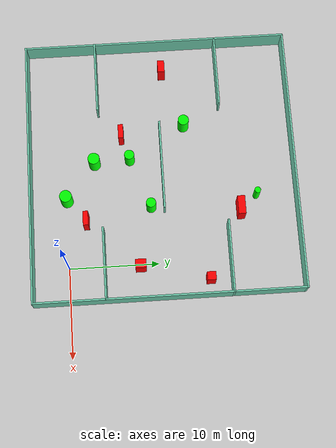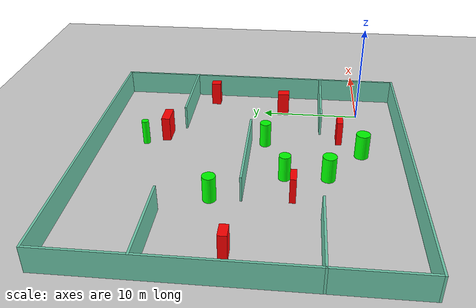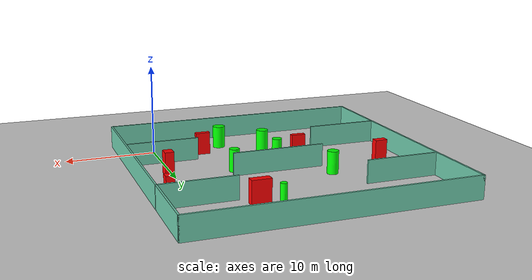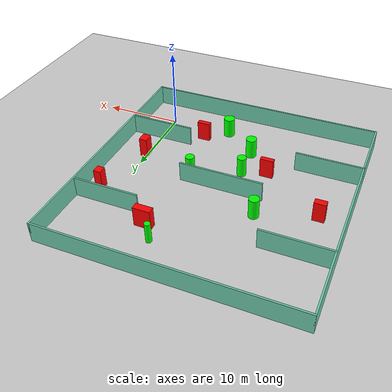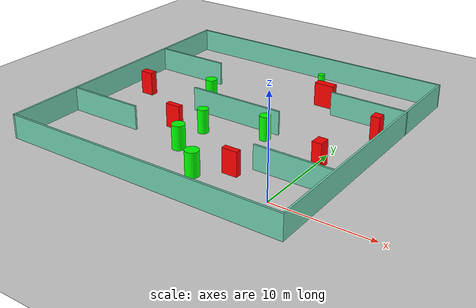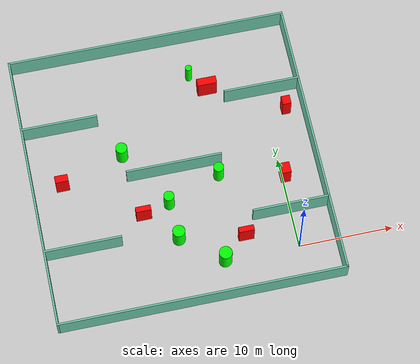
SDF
<sdf version="1.7">
 <world name="default">
  <light name="sun" type="directional">
   <pose>0 0 10 0 -0 0</pose>
   <diffuse>0.8 0.8 0.8 1</diffuse>
   <specular>0.2 0.2 0.2 1</specular>
   <attenuation>
    <range>1000</range>
    <constant>0.9</constant>
    <linear>0.01</linear>
    <quadratic>0.001</quadratic>
   </attenuation>
   <direction>-0.5 0.1 -0.9</direction>
   <spot><inner_angle>0</inner_angle><outer_angle>0</outer_angle><falloff>0</falloff></spot>
  </light>
  <model name="ground_plane">
   <static>1</static>
   <link name="link">
    <collision name="collision">
     <geometry><plane><normal>0 0 1</normal><size>100 100</size></plane></geometry>
     <surface>
      <contact><collide_bitmask>65535</collide_bitmask></contact>
      <friction><ode><mu>100</mu><mu2>50</mu2></ode></friction>
     </surface>
    </collision>
    <visual name="visual">
     <cast_shadows>0</cast_shadows>
     <geometry><plane><normal>0 0 1</normal><size>100 100</size></plane></geometry>
     <material>
      <script><uri>file://media/materials/scripts/gazebo.material</uri><name>Gazebo/Grey</name></script>
     </material>
    </visual>
   </link>
  </model>
  <gravity>0 0 -9.8</gravity>
  <magnetic_field>6e-06 2.3e-05 -4.2e-05</magnetic_field>
  <atmosphere type="adiabatic"/>
  <physics type="ode">
   <max_step_size>0.001</max_step_size>
   <real_time_factor>1</real_time_factor>
   <real_time_update_rate>1000</real_time_update_rate>
  </physics>
  <scene><ambient>0.4 0.4 0.4 1</ambient><background>0.7 0.7 0.7 1</background><shadows>1</shadows></scene>
  <spherical_coordinates>
   <surface_model>EARTH_WGS84</surface_model>
   <latitude_deg>0</latitude_deg>
   <longitude_deg>0</longitude_deg>
   <elevation>0</elevation>
   <heading_deg>0</heading_deg>
  </spherical_coordinates>
  <model name="my_base_walls">
   <link name="Wall_10">
    <collision name="Wall_10_Collision">
     <geometry><box><size>8.2 0.2 2.5</size></box></geometry>
     <pose>0 0 1.25 0 -0 0</pose>
    </collision>
    <visual name="Wall_10_Visual">
     <pose>0 0 1.25 0 -0 0</pose>
     <geometry><box><size>8.2 0.2 2.5</size></box></geometry>
     <material>
      <script><uri>file://media/materials/scripts/gazebo.material</uri><name>Gazebo/Grey</name></script>
      <ambient>0.435294 0.796078 0.67451 1</ambient>
     </material>
     <meta><layer>0</layer></meta>
    </visual>
    <pose>-11 -7 0 0 -0 0</pose>
   </link>
   <link name="Wall_12">
    <collision name="Wall_12_Collision">
     <geometry><box><size>8.2 0.2 2.5</size></box></geometry>
     <pose>0 0 1.25 0 -0 0</pose>
    </collision>
    <visual name="Wall_12_Visual">
     <pose>0 0 1.25 0 -0 0</pose>
     <geometry><box><size>8.2 0.2 2.5</size></box></geometry>
     <material>
      <script><uri>file://media/materials/scripts/gazebo.material</uri><name>Gazebo/Grey</name></script>
      <ambient>0.435294 0.796078 0.67451 1</ambient>
     </material>
     <meta><layer>0</layer></meta>
    </visual>
    <pose>-11 7 0 0 -0 0</pose>
   </link>
   <link name="Wall_14">
    <collision name="Wall_14_Collision">
     <geometry><box><size>8.2 0.2 2.5</size></box></geometry>
     <pose>0 0 1.25 0 -0 0</pose>
    </collision>
    <visual name="Wall_14_Visual">
     <pose>0 0 1.25 0 -0 0</pose>
     <geometry><box><size>8.2 0.2 2.5</size></box></geometry>
     <material>
      <script><uri>file://media/materials/scripts/gazebo.material</uri><name>Gazebo/Grey</name></script>
      <ambient>0.435294 0.796078 0.67451 1</ambient>
     </material>
     <meta><layer>0</layer></meta>
    </visual>
    <pose>11 7 0 0 -0 3.14159</pose>
   </link>
   <link name="Wall_16">
    <collision name="Wall_16_Collision">
     <geometry><box><size>10.2 0.2 2.5</size></box></geometry>
     <pose>0 0 1.25 0 -0 0</pose>
    </collision>
    <visual name="Wall_16_Visual">
     <pose>0 0 1.25 0 -0 0</pose>
     <geometry><box><size>10.2 0.2 2.5</size></box></geometry>
     <material>
      <script><uri>file://media/materials/scripts/gazebo.material</uri><name>Gazebo/Grey</name></script>
      <ambient>0.435294 0.796078 0.67451 1</ambient>
     </material>
     <meta><layer>0</layer></meta>
    </visual>
    <pose>0 0 0 0 -0 3.14159</pose>
   </link>
   <link name="Wall_2">
    <collision name="Wall_2_Collision">
     <geometry><box><size>30.2 0.2 2.5</size></box></geometry>
     <pose>0 0 1.25 0 -0 0</pose>
    </collision>
    <visual name="Wall_2_Visual">
     <pose>0 0 1.25 0 -0 0</pose>
     <geometry><box><size>30.2 0.2 2.5</size></box></geometry>
     <material>
      <script><uri>file://media/materials/scripts/gazebo.material</uri><name>Gazebo/Grey</name></script>
      <ambient>0.435294 0.796078 0.67451 1</ambient>
     </material>
     <meta><layer>0</layer></meta>
    </visual>
    <pose>0 -15 0 0 -0 3.14159</pose>
   </link>
   <link name="Wall_3">
    <collision name="Wall_3_Collision">
     <geometry><box><size>30.2 0.2 2.5</size></box></geometry>
     <pose>0 0 1.25 0 -0 0</pose>
    </collision>
    <visual name="Wall_3_Visual">
     <pose>0 0 1.25 0 -0 0</pose>
     <geometry><box><size>30.2 0.2 2.5</size></box></geometry>
     <material>
      <script><uri>file://media/materials/scripts/gazebo.material</uri><name>Gazebo/Grey</name></script>
      <ambient>0.435294 0.796078 0.67451 1</ambient>
     </material>
     <meta><layer>0</layer></meta>
    </visual>
    <pose>-15 0 0 0 -0 1.5708</pose>
   </link>
   <link name="Wall_4">
    <collision name="Wall_4_Collision">
     <geometry><box><size>30.2 0.2 2.5</size></box></geometry>
     <pose>0 0 1.25 0 -0 0</pose>
    </collision>
    <visual name="Wall_4_Visual">
     <pose>0 0 1.25 0 -0 0</pose>
     <geometry><box><size>30.2 0.2 2.5</size></box></geometry>
     <material>
      <script><uri>file://media/materials/scripts/gazebo.material</uri><name>Gazebo/Grey</name></script>
      <ambient>0.435294 0.796078 0.67451 1</ambient>
     </material>
     <meta><layer>0</layer></meta>
    </visual>
    <pose>0 15 0 0 -0 0</pose>
   </link>
   <link name="Wall_6">
    <collision name="Wall_6_Collision">
     <geometry><box><size>30.2 0.2 2.5</size></box></geometry>
     <pose>0 0 1.25 0 -0 0</pose>
    </collision>
    <visual name="Wall_6_Visual">
     <pose>0 0 1.25 0 -0 0</pose>
     <geometry><box><size>30.2 0.2 2.5</size></box></geometry>
     <material>
      <script><uri>file://media/materials/scripts/gazebo.material</uri><name>Gazebo/Grey</name></script>
      <ambient>0.435294 0.796078 0.67451 1</ambient>
     </material>
     <meta><layer>0</layer></meta>
    </visual>
    <pose>15 0 0 0 -0 1.5708</pose>
   </link>
   <link name="Wall_8">
    <collision name="Wall_8_Collision">
     <geometry><box><size>8.2 0.2 2.5</size></box></geometry>
     <pose>0 0 1.25 0 -0 0</pose>
    </collision>
    <visual name="Wall_8_Visual">
     <pose>0 0 1.25 0 -0 0</pose>
     <geometry><box><size>8.2 0.2 2.5</size></box></geometry>
     <material>
      <script><uri>file://media/materials/scripts/gazebo.material</uri><name>Gazebo/Grey</name></script>
      <ambient>0.435294 0.796078 0.67451 1</ambient>
     </material>
     <meta><layer>0</layer></meta>
    </visual>
    <pose>11 -7 0 0 -0 3.14159</pose>
   </link>
   <static>1</static>
   <pose>-11 11 0 0 -0 0</pose>
  </model>
  <model name="cylinder1">
   <static>1</static>
   <link name="link">
    <inertial>
     <mass>1</mass>
     <inertia><ixx>0.5</ixx><ixy>0</ixy><ixz>0</ixz><iyy>0.5</iyy><iyz>0</iyz><izz>1</izz></inertia>
    </inertial>
    <collision name="collision">
     <geometry><cylinder><radius>0.6613445637820715</radius><length>2.5</length></cylinder></geometry>
    </collision>
    <visual name="visual">
     <geometry><cylinder><radius>0.6613445637820715</radius><length>2.5</length></cylinder></geometry>
     <material>
      <ambient>0 1 0 1</ambient>
      <diffuse>0 1 0 1</diffuse>
      <specular>0.1 0.1 0.1 1</specular>
      <emissive>0 0 0 0</emissive>
     </material>
    </visual>
   </link>
   <pose>-12.054231684396626 3.3334188692104876 1.25 0 0 0</pose>
  </model>
  <model name="cylinder2">
   <static>1</static>
   <link name="link">
    <inertial>
     <mass>1</mass>
     <inertia><ixx>0.5</ixx><ixy>0</ixy><ixz>0</ixz><iyy>0.5</iyy><iyz>0</iyz><izz>1</izz></inertia>
    </inertial>
    <collision name="collision">
     <geometry><cylinder><radius>0.34822787399925376</radius><length>2.5</length></cylinder></geometry>
    </collision>
    <visual name="visual">
     <geometry><cylinder><radius>0.34822787399925376</radius><length>2.5</length></cylinder></geometry>
     <material>
      <ambient>0 1 0 1</ambient>
      <diffuse>0 1 0 1</diffuse>
      <specular>0.1 0.1 0.1 1</specular>
      <emissive>0 0 0 0</emissive>
     </material>
    </visual>
   </link>
   <pose>-7.252722226163993 21.505140849278227 1.25 0 0 0</pose>
  </model>
  <model name="cylinder3">
   <static>1</static>
   <link name="link">
    <inertial>
     <mass>1</mass>
     <inertia><ixx>0.5</ixx><ixy>0</ixy><ixz>0</ixz><iyy>0.5</iyy><iyz>0</iyz><izz>1</izz></inertia>
    </inertial>
    <collision name="collision">
     <geometry><cylinder><radius>0.5539827721656079</radius><length>2.5</length></cylinder></geometry>
    </collision>
    <visual name="visual">
     <geometry><cylinder><radius>0.5539827721656079</radius><length>2.5</length></cylinder></geometry>
     <material>
      <ambient>0 1 0 1</ambient>
      <diffuse>0 1 0 1</diffuse>
      <specular>0.1 0.1 0.1 1</specular>
      <emissive>0 0 0 0</emissive>
     </material>
    </visual>
   </link>
   <pose>-12.275056622205128 7.366962982718297 1.25 0 0 0</pose>
  </model>
  <model name="cylinder4">
   <static>1</static>
   <link name="link">
    <inertial>
     <mass>1</mass>
     <inertia><ixx>0.5</ixx><ixy>0</ixy><ixz>0</ixz><iyy>0.5</iyy><iyz>0</iyz><izz>1</izz></inertia>
    </inertial>
    <collision name="collision">
     <geometry><cylinder><radius>0.5460114021804036</radius><length>2.5</length></cylinder></geometry>
    </collision>
    <visual name="visual">
     <geometry><cylinder><radius>0.5460114021804036</radius><length>2.5</length></cylinder></geometry>
     <material>
      <ambient>0 1 0 1</ambient>
      <diffuse>0 1 0 1</diffuse>
      <specular>0.1 0.1 0.1 1</specular>
      <emissive>0 0 0 0</emissive>
     </material>
    </visual>
   </link>
   <pose>-6.526363433222187 9.508453597522399 1.25 0 0 0</pose>
  </model>
  <model name="cylinder5">
   <static>1</static>
   <link name="link">
    <inertial>
     <mass>1</mass>
     <inertia><ixx>0.5</ixx><ixy>0</ixy><ixz>0</ixz><iyy>0.5</iyy><iyz>0</iyz><izz>1</izz></inertia>
    </inertial>
    <collision name="collision">
     <geometry><cylinder><radius>0.6109946070111878</radius><length>2.5</length></cylinder></geometry>
    </collision>
    <visual name="visual">
     <geometry><cylinder><radius>0.6109946070111878</radius><length>2.5</length></cylinder></geometry>
     <material>
      <ambient>0 1 0 1</ambient>
      <diffuse>0 1 0 1</diffuse>
      <specular>0.1 0.1 0.1 1</specular>
      <emissive>0 0 0 0</emissive>
     </material>
    </visual>
   </link>
   <pose>-16.06995228990093 13.760186336183892 1.25 0 0 0</pose>
  </model>
  <model name="cylinder6">
   <static>1</static>
   <link name="link">
    <inertial>
     <mass>1</mass>
     <inertia><ixx>0.5</ixx><ixy>0</ixy><ixz>0</ixz><iyy>0.5</iyy><iyz>0</iyz><izz>1</izz></inertia>
    </inertial>
    <collision name="collision">
     <geometry><cylinder><radius>0.6878272446913707</radius><length>2.5</length></cylinder></geometry>
    </collision>
    <visual name="visual">
     <geometry><cylinder><radius>0.6878272446913707</radius><length>2.5</length></cylinder></geometry>
     <material>
      <ambient>0 1 0 1</ambient>
      <diffuse>0 1 0 1</diffuse>
      <specular>0.1 0.1 0.1 1</specular>
      <emissive>0 0 0 0</emissive>
     </material>
    </visual>
   </link>
   <pose>-7.838408832672879 0.01729085214636994 1.25 0 0 0</pose>
  </model>
  <model name="box1">
   <static>1</static>
   <link name="link">
    <inertial>
     <mass>1</mass>
     <inertia><ixx>0.083</ixx><ixy>0</ixy><ixz>0</ixz><iyy>0.083</iyy><iyz>0</iyz><izz>0.083</izz></inertia>
    </inertial>
    <collision name="collision">
     <geometry><box><size>0.9877182211724707 1.1907739925920273 2.5</size></box></geometry>
    </collision>
    <visual name="visual">
     <geometry><box><size>0.9877182211724707 1.1907739925920273 2.5</size></box></geometry>
     <material>
      <ambient>1 0 0 1</ambient>
      <diffuse>1 0 0 1</diffuse>
      <specular>0.1 0.1 0.1 1</specular>
      <emissive>0 0 0 0</emissive>
     </material>
    </visual>
    <sensor name="my_contact" type="contact">
     <contact><collision>box_collision</collision><topic>__default_topic__</topic></contact>
    </sensor>
   </link>
   <pose>0.2935264171447649 7.977003825512277 1.25 0 0 0</pose>
  </model>
  <model name="box2">
   <static>1</static>
   <link name="link">
    <inertial>
     <mass>1</mass>
     <inertia><ixx>0.083</ixx><ixy>0</ixy><ixz>0</ixz><iyy>0.083</iyy><iyz>0</iyz><izz>0.083</izz></inertia>
    </inertial>
    <collision name="collision">
     <geometry><box><size>0.9188319882334538 0.977134456977581 2.5</size></box></geometry>
    </collision>
    <visual name="visual">
     <geometry><box><size>0.9188319882334538 0.977134456977581 2.5</size></box></geometry>
     <material>
      <ambient>1 0 0 1</ambient>
      <diffuse>1 0 0 1</diffuse>
      <specular>0.1 0.1 0.1 1</specular>
      <emissive>0 0 0 0</emissive>
     </material>
    </visual>
    <sensor name="my_contact" type="contact">
     <contact><collision>box_collision</collision><topic>__default_topic__</topic></contact>
    </sensor>
   </link>
   <pose>2.1342466065503665 15.627251783358453 1.25 0 0 0</pose>
  </model>
  <model name="box3">
   <static>1</static>
   <link name="link">
    <inertial>
     <mass>1</mass>
     <inertia><ixx>0.083</ixx><ixy>0</ixy><ixz>0</ixz><iyy>0.083</iyy><iyz>0</iyz><izz>0.083</izz></inertia>
    </inertial>
    <collision name="collision">
     <geometry><box><size>1.3869179290152878 0.7745312800876405 2.5</size></box></geometry>
    </collision>
    <visual name="visual">
     <geometry><box><size>1.3869179290152878 0.7745312800876405 2.5</size></box></geometry>
     <material>
      <ambient>1 0 0 1</ambient>
      <diffuse>1 0 0 1</diffuse>
      <specular>0.1 0.1 0.1 1</specular>
      <emissive>0 0 0 0</emissive>
     </material>
    </visual>
    <sensor name="my_contact" type="contact">
     <contact><collision>box_collision</collision><topic>__default_topic__</topic></contact>
    </sensor>
   </link>
   <pose>-22.84640124740701 11.608519552482267 1.25 0 0 0</pose>
  </model>
  <model name="box4">
   <static>1</static>
   <link name="link">
    <inertial>
     <mass>1</mass>
     <inertia><ixx>0.083</ixx><ixy>0</ixy><ixz>0</ixz><iyy>0.083</iyy><iyz>0</iyz><izz>0.083</izz></inertia>
    </inertial>
    <collision name="collision">
     <geometry><box><size>1.6004396046342129 0.582008755022752 2.5</size></box></geometry>
    </collision>
    <visual name="visual">
     <geometry><box><size>1.6004396046342129 0.582008755022752 2.5</size></box></geometry>
     <material>
      <ambient>1 0 0 1</ambient>
      <diffuse>1 0 0 1</diffuse>
      <specular>0.1 0.1 0.1 1</specular>
      <emissive>0 0 0 0</emissive>
     </material>
    </visual>
    <sensor name="my_contact" type="contact">
     <contact><collision>box_collision</collision><topic>__default_topic__</topic></contact>
    </sensor>
   </link>
   <pose>-5.19712654337633 2.1370014652129248 1.25 0 0 0</pose>
  </model>
  <model name="box5">
   <static>1</static>
   <link name="link">
    <inertial>
     <mass>1</mass>
     <inertia><ixx>0.083</ixx><ixy>0</ixy><ixz>0</ixz><iyy>0.083</iyy><iyz>0</iyz><izz>0.083</izz></inertia>
    </inertial>
    <collision name="collision">
     <geometry><box><size>2.071346532083904 0.8352846756088461 2.5</size></box></geometry>
    </collision>
    <visual name="visual">
     <geometry><box><size>2.071346532083904 0.8352846756088461 2.5</size></box></geometry>
     <material>
      <ambient>1 0 0 1</ambient>
      <diffuse>1 0 0 1</diffuse>
      <specular>0.1 0.1 0.1 1</specular>
      <emissive>0 0 0 0</emissive>
     </material>
    </visual>
    <sensor name="my_contact" type="contact">
     <contact><collision>box_collision</collision><topic>__default_topic__</topic></contact>
    </sensor>
   </link>
   <pose>-5.66707888073511 19.57653551174209 1.25 0 0 0</pose>
  </model>
  <model name="box6">
   <static>1</static>
   <link name="link">
    <inertial>
     <mass>1</mass>
     <inertia><ixx>0.083</ixx><ixy>0</ixy><ixz>0</ixz><iyy>0.083</iyy><iyz>0</iyz><izz>0.083</izz></inertia>
    </inertial>
    <collision name="collision">
     <geometry><box><size>1.6090068096583217 0.5736861043557713 2.5</size></box></geometry>
    </collision>
    <visual name="visual">
     <geometry><box><size>1.6090068096583217 0.5736861043557713 2.5</size></box></geometry>
     <material>
      <ambient>1 0 0 1</ambient>
      <diffuse>1 0 0 1</diffuse>
      <specular>0.1 0.1 0.1 1</specular>
      <emissive>0 0 0 0</emissive>
     </material>
    </visual>
    <sensor name="my_contact" type="contact">
     <contact><collision>box_collision</collision><topic>__default_topic__</topic></contact>
    </sensor>
   </link>
   <pose>-15.152256957933497 6.532500267534196 1.25 0 0 0</pose>
  </model>
 </world>
</sdf>
